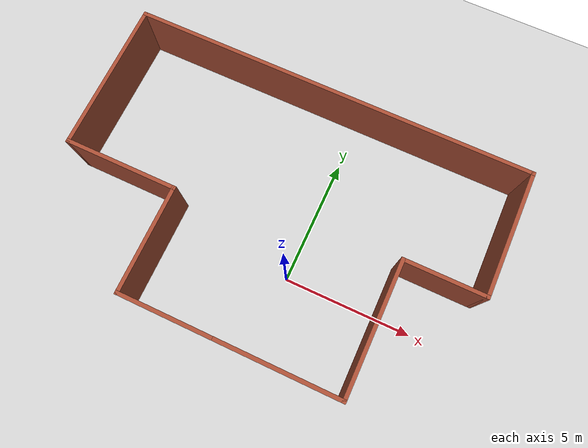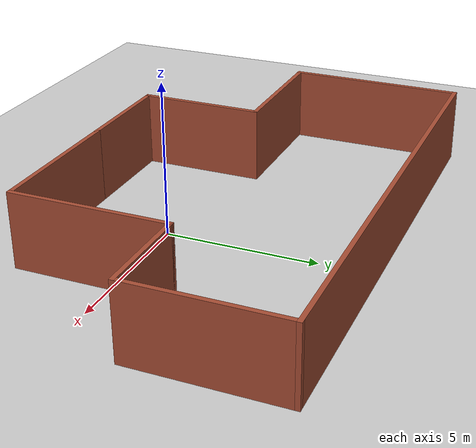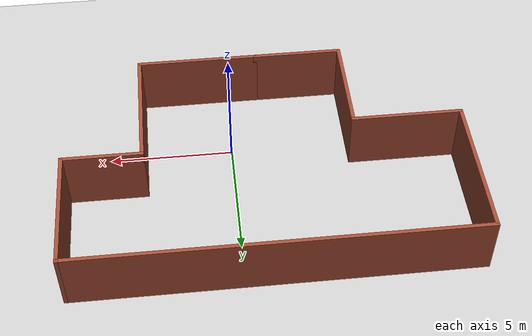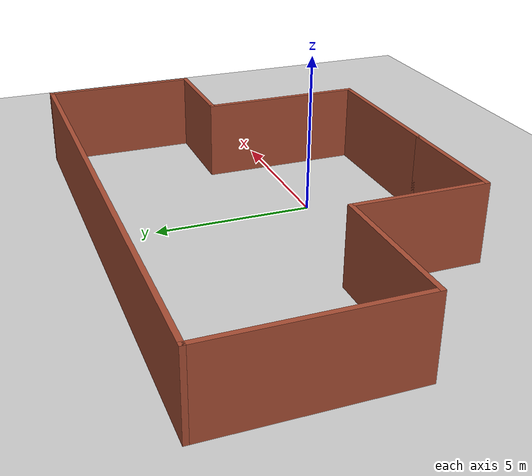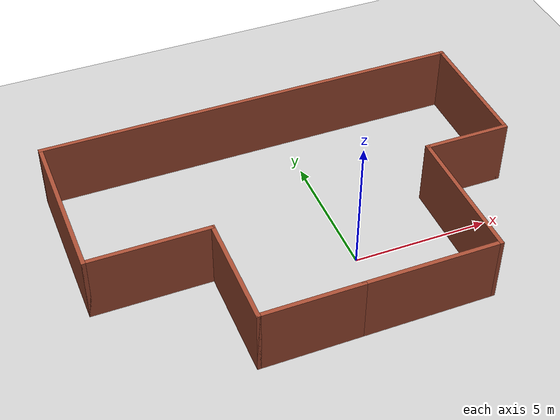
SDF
<sdf version="1.6">
 <world name="default">
  <light name="sun" type="directional">
   <pose>0 0 10 0 -0 0</pose>
   <diffuse>0.8 0.8 0.8 1</diffuse>
   <specular>0.1 0.1 0.1 1</specular>
   <attenuation>
    <range>1000</range>
    <constant>0.9</constant>
    <linear>0.01</linear>
    <quadratic>0.001</quadratic>
   </attenuation>
   <direction>-0.5 0.5 -1</direction>
  </light>
  <model name="ground_plane">
   <static>1</static>
   <link name="link">
    <collision name="collision">
     <geometry><plane><normal>0 0 1</normal><size>100 100</size></plane></geometry>
     <surface><friction><ode><mu>100</mu><mu2>50</mu2></ode></friction></surface>
    </collision>
    <visual name="visual">
     <cast_shadows>0</cast_shadows>
     <geometry><plane><normal>0 0 1</normal><size>100 100</size></plane></geometry>
     <material>
      <script><uri>file://media/materials/scripts/gazebo.material</uri><name>Gazebo/Grey</name></script>
     </material>
    </visual>
   </link>
  </model>
  <gravity>0 0 -9.8</gravity>
  <magnetic_field>6e-06 2.3e-05 -4.2e-05</magnetic_field>
  <atmosphere type="adiabatic"/>
  <physics name="default_physics" default="0" type="ode">
   <max_step_size>0.001</max_step_size>
   <real_time_factor>1</real_time_factor>
   <real_time_update_rate>1000</real_time_update_rate>
  </physics>
  <scene><ambient>0.4 0.4 0.4 1</ambient><background>0.7 0.7 0.7 1</background><shadows>1</shadows></scene>
  <spherical_coordinates>
   <surface_model>EARTH_WGS84</surface_model>
   <latitude_deg>0</latitude_deg>
   <longitude_deg>0</longitude_deg>
   <elevation>0</elevation>
   <heading_deg>0</heading_deg>
  </spherical_coordinates>
  <model name="test_room">
   <pose>-1.265 1.855 0 0 -0 0</pose>
   <link name="Wall_1">
    <collision name="Wall_1_Collision">
     <geometry><box><size>5 0.15 2.5</size></box></geometry>
     <pose>0 0 1.25 0 -0 0</pose>
    </collision>
    <visual name="Wall_1_Visual">
     <pose>0 0 1.25 0 -0 0</pose>
     <geometry><box><size>5 0.15 2.5</size></box></geometry>
     <material>
      <script><uri>file://media/materials/scripts/gazebo.material</uri><name>Gazebo/Bricks</name></script>
      <ambient>1 1 1 1</ambient>
     </material>
    </visual>
    <pose>2.4 -4.975 0 0 -0 0</pose>
   </link>
   <link name="Wall_10">
    <collision name="Wall_10_Collision">
     <geometry><box><size>4.25 0.15 2.5</size></box></geometry>
     <pose>0 0 1.25 0 -0 0</pose>
    </collision>
    <visual name="Wall_10_Visual">
     <pose>0 0 1.25 0 -0 0</pose>
     <geometry><box><size>4.25 0.15 2.5</size></box></geometry>
     <material>
      <script><uri>file://media/materials/scripts/gazebo.material</uri><name>Gazebo/Bricks</name></script>
      <ambient>1 1 1 1</ambient>
     </material>
    </visual>
    <pose>-3.575 -2.925 0 0 0 -1.5708</pose>
   </link>
   <link name="Wall_11">
    <collision name="Wall_11_Collision">
     <geometry><box><size>3.7 0.15 2.5</size></box></geometry>
     <pose>0 0 1.25 0 -0 0</pose>
    </collision>
    <visual name="Wall_11_Visual">
     <pose>0 0 1.25 0 -0 0</pose>
     <geometry><box><size>3.7 0.15 2.5</size></box></geometry>
     <material>
      <script><uri>file://media/materials/scripts/gazebo.material</uri><name>Gazebo/Bricks</name></script>
      <ambient>1 1 1 1</ambient>
     </material>
    </visual>
    <pose>-1.8 -4.975 0 0 -0 0</pose>
   </link>
   <link name="Wall_2">
    <collision name="Wall_2_Collision">
     <geometry><box><size>5.25 0.15 2.5</size></box></geometry>
     <pose>0 0 1.25 0 -0 0</pose>
    </collision>
    <visual name="Wall_2_Visual">
     <pose>0 0 1.25 0 -0 0</pose>
     <geometry><box><size>5.25 0.15 2.5</size></box></geometry>
     <material>
      <script><uri>file://media/materials/scripts/gazebo.material</uri><name>Gazebo/Bricks</name></script>
      <ambient>1 1 1 1</ambient>
     </material>
    </visual>
    <pose>4.825 -2.425 0 0 -0 1.5708</pose>
   </link>
   <link name="Wall_3">
    <collision name="Wall_3_Collision">
     <geometry><box><size>3.25 0.15 2.5</size></box></geometry>
     <pose>0 0 1.25 0 -0 0</pose>
    </collision>
    <visual name="Wall_3_Visual">
     <pose>0 0 1.25 0 -0 0</pose>
     <geometry><box><size>3.25 0.15 2.5</size></box></geometry>
     <material>
      <script><uri>file://media/materials/scripts/gazebo.material</uri><name>Gazebo/Bricks</name></script>
      <ambient>1 1 1 1</ambient>
     </material>
    </visual>
    <pose>6.375 0.125 0 0 -0 0</pose>
   </link>
   <link name="Wall_4">
    <collision name="Wall_4_Collision">
     <geometry><box><size>5 0.15 2.5</size></box></geometry>
     <pose>0 0 1.25 0 -0 0</pose>
    </collision>
    <visual name="Wall_4_Visual">
     <pose>0 0 1.25 0 -0 0</pose>
     <geometry><box><size>5 0.15 2.5</size></box></geometry>
     <material>
      <script><uri>file://media/materials/scripts/gazebo.material</uri><name>Gazebo/Bricks</name></script>
      <ambient>1 1 1 1</ambient>
     </material>
    </visual>
    <pose>7.925 2.55 0 0 -0 1.5708</pose>
   </link>
   <link name="Wall_5">
    <collision name="Wall_5_Collision">
     <geometry><box><size>16 0.15 2.5</size></box></geometry>
     <pose>0 0 1.25 0 -0 0</pose>
    </collision>
    <visual name="Wall_5_Visual">
     <pose>0 0 1.25 0 -0 0</pose>
     <geometry><box><size>16 0.15 2.5</size></box></geometry>
     <material>
      <script><uri>file://media/materials/scripts/gazebo.material</uri><name>Gazebo/Bricks</name></script>
      <ambient>1 1 1 1</ambient>
     </material>
    </visual>
    <pose>0 4.975 0 0 -0 3.14159</pose>
   </link>
   <link name="Wall_6">
    <collision name="Wall_6_Collision">
     <geometry><box><size>6 0.15 2.5</size></box></geometry>
     <pose>0 0 1.25 0 -0 0</pose>
    </collision>
    <visual name="Wall_6_Visual">
     <pose>0 0 1.25 0 -0 0</pose>
     <geometry><box><size>6 0.15 2.5</size></box></geometry>
     <material>
      <script><uri>file://media/materials/scripts/gazebo.material</uri><name>Gazebo/Bricks</name></script>
      <ambient>1 1 1 1</ambient>
     </material>
    </visual>
    <pose>-7.925 2.05 0 0 0 -1.5708</pose>
   </link>
   <link name="Wall_7">
    <collision name="Wall_7_Collision">
     <geometry><box><size>4.5 0.15 2.5</size></box></geometry>
     <pose>0 0 1.25 0 -0 0</pose>
    </collision>
    <visual name="Wall_7_Visual">
     <pose>0 0 1.25 0 -0 0</pose>
     <geometry><box><size>4.5 0.15 2.5</size></box></geometry>
     <material>
      <script><uri>file://media/materials/scripts/gazebo.material</uri><name>Gazebo/Bricks</name></script>
      <ambient>1 1 1 1</ambient>
     </material>
    </visual>
    <pose>-5.75 -0.875 0 0 -0 0</pose>
   </link>
   <static>1</static>
  </model>
 </world>
</sdf>
